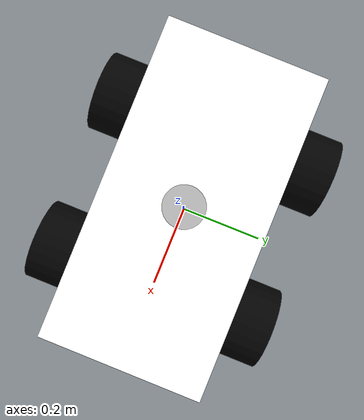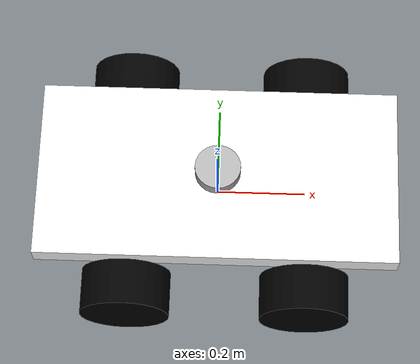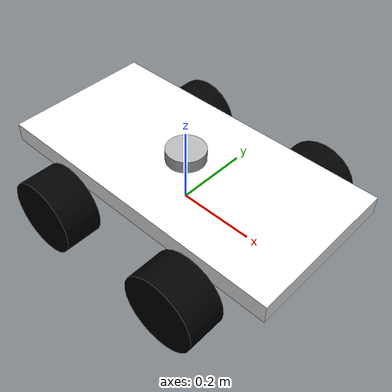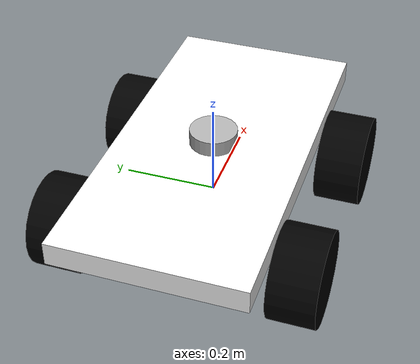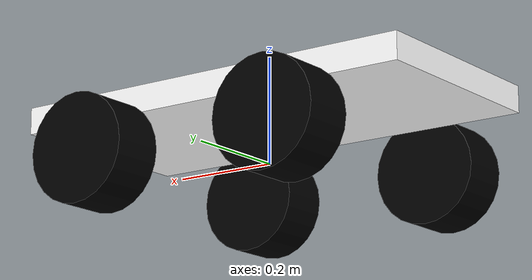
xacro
<?xml version="1.0"?>
<robot xmlns:xacro="http://www.ros.org/wiki/xacro"  name="robot">

    <xacro:arg name="use_ros2_control" default="true"/>

    <xacro:include filename="robot_core_lr.xacro" />

    <xacro:if value="$(arg use_ros2_control)">
        <xacro:include filename="ros2_control.xacro" />
    </xacro:if>
    <xacro:unless value="$(arg use_ros2_control)">
        <xacro:include filename="gazebo_control.xacro" />
    </xacro:unless>
    <xacro:include filename="lidar.xacro" />

</robot>

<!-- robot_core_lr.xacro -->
<robot xmlns:xacro="http://www.ros.org/wiki/xacro">

	<xacro:include filename="inertial_macros.xacro"/>

	<material name="white">
		<color rgba="1 1 1 1"/>
	</material>

	<material name="black">
		<color rgba="0 0 0 1"/>
	</material>

	<!-- BASE LINK -->
	<link name="base_link">

	</link>

	<!-- BASE FOOTPRINT -->
	<joint name="base_footprint_joint" type="fixed">
		<parent link="base_link"/>
		<child link="base_footprint"/>
		<origin xyz="0 0 0" rpy="0 0 0"/>
	</joint>

	<link name="base_footprint">

	</link>

	<!-- CHASSIS -->
	<joint name="chassis_joint" type="fixed">
		<parent link="base_link"/>
		<child link="chassis_link"/>
		<origin xyz="0 0 0"/>
	</joint>

	<link name="chassis_link">
		<visual>
			<origin xyz="0 0 0.1"/>
			<geometry>
				<box size="0.8 0.4 0.05"/>
			</geometry>
			<material name="white"/>
		</visual>

		<collision>
			<origin xyz="0 0 0.1"/>
			<geometry>
				<box size="0.8 0.4 0.05"/>
			</geometry>
		</collision>

		<xacro:inertial_box mass="0.5" x="0.8" y="0.4" z="0.05">
        	<origin xyz="0 0 0.1" rpy="0 0 0"/>
        </xacro:inertial_box>
	</link>

	<gazebo reference="chassis">
		<material>Gazebo/White</material>
	</gazebo>

	<!-- WHEEL1 -->
	<joint name="wheel1_joint" type="continuous">
		<parent link="base_link"/>
		<child link="wheel1_link"/>
		<origin xyz="0.2 0.25 0" rpy="${-pi/2} 0 0"/>
		<axis xyz="0 0 1"/>
		<limit effort="10000" velocity="1000" />
	    <dynamics damping="1.0" friction="1.0" />
	</joint>

	<link name="wheel1_link">
		<visual>
			<geometry>
				<cylinder radius="0.1" length="0.1"/>
			</geometry>
			<material name="black"/>
		</visual>

		<collision>
			<geometry>
				<cylinder radius="0.1" length="0.1"/>
			</geometry>
		</collision>

		<xacro:inertial_cylinder mass="0.1" length="0.1" radius="0.1">
        	<origin xyz="0 0 0" rpy="0 0 0"/>
        </xacro:inertial_cylinder>
	</link>

	<gazebo reference="wheel1_link">
		<material>Gazebo/Black</material>
	</gazebo>

	<!-- WHEEL2 -->
	<joint name="wheel2_joint" type="continuous">
		<parent link="base_link"/>
		<child link="wheel2_link"/>
		<origin xyz="0.2 -0.25 0" rpy="${pi/2} 0 0"/>
		<axis xyz="0 0 -1"/>
		<limit effort="10000" velocity="1000" />
	    <dynamics damping="1.0" friction="1.0" />
	</joint>

	<link name="wheel2_link">
		<visual>
			<geometry>
				<cylinder radius="0.1" length="0.1"/>
			</geometry>
			<material name="black"/>
		</visual>

		<collision>
			<geometry>
				<cylinder radius="0.1" length="0.1"/>
			</geometry>
		</collision>

		<xacro:inertial_cylinder mass="0.1" length="0.1" radius="0.1">
        	<origin xyz="0 0 0" rpy="0 0 0"/>
        </xacro:inertial_cylinder>
	</link>

	<gazebo reference="wheel2_link">
		<material>Gazebo/Black</material>
	</gazebo>

	<!-- WHEEL3 -->
	<joint name="wheel3_joint" type="continuous">
		<parent link="base_link"/>
		<child link="wheel3_link"/>
		<origin xyz="-0.2 0.25 0" rpy="${-pi/2} 0 0"/>
		<axis xyz="0 0 1"/>
		<limit effort="10000" velocity="1000" />
	    <dynamics damping="1.0" friction="1.0" />
	</joint>

	<link name="wheel3_link">
		<visual>
			<geometry>
				<cylinder radius="0.1" length="0.1"/>
			</geometry>
			<material name="black"/>
		</visual>

		<collision>
			<geometry>
				<cylinder radius="0.1" length="0.1"/>
			</geometry>
		</collision>

		<xacro:inertial_cylinder mass="0.1" length="0.1" radius="0.1">
        	<origin xyz="0 0 0" rpy="0 0 0"/>
        </xacro:inertial_cylinder>
	</link>

	<gazebo reference="wheel3_link">
		<material>Gazebo/Black</material>
	</gazebo>

	<!-- WHEEL4 -->
	<joint name="wheel4_joint" type="continuous">
		<parent link="base_link"/>
		<child link="wheel4_link"/>
		<origin xyz="-0.2 -0.25 0" rpy="${pi/2} 0 0"/>
		<axis xyz="0 0 -1"/>
		<limit effort="10000" velocity="1000" />
	    <dynamics damping="1.0" friction="1.0" />
	</joint>

	<link name="wheel4_link">
		<visual>
			<geometry>
				<cylinder radius="0.1" length="0.1"/>
			</geometry>
			<material name="black"/>
		</visual>

		<collision>
			<geometry>
				<cylinder radius="0.1" length="0.1"/>
			</geometry>
		</collision>

		<xacro:inertial_cylinder mass="0.1" length="0.1" radius="0.1">
        	<origin xyz="0 0 0" rpy="0 0 0"/>
        </xacro:inertial_cylinder>
	</link>

	<gazebo reference="wheel4_link">
		<material>Gazebo/Black</material>
	</gazebo>
</robot>

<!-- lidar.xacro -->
<robot xmlns:xacro="http://www.ros.org/wiki/xacro" >

<link name="laser_link">
  <inertial>
    <origin xyz="0 0 0" rpy="0 0 0"/>
    <mass value="0.125"/>
    <inertia ixx="0.001"  ixy="0"  ixz="0" iyy="0.001" iyz="0" izz="0.001" />
  </inertial>

  <collision>
    <origin xyz="0 0 0" rpy="0 0 0"/>
    <geometry>
       <cylinder radius="0.0508" length="0.055"/>
    </geometry>
  </collision>

  <visual>
    <origin xyz="0 0 0" rpy="0 0 0"/>
    <geometry>
       <cylinder radius="0.0508" length="0.055"/>
    </geometry>
  </visual>
</link>

<joint name="lidar_joint" type="fixed">
  <parent link="base_link"/>
  <child link="laser_link"/>
  <origin xyz="0 0 0.13" rpy="0 0 0"/>
</joint>

<gazebo reference="laser_link">
  <sensor name="lidar" type="ray">
    <pose>0 0 0 0 0 0</pose>
    <always_on>true</always_on>
    <visualize>true</visualize>
    <update_rate>5</update_rate>
    <ray>
      <scan>
        <horizontal>
          <samples>360</samples>
          <resolution>1.000000</resolution>
          <min_angle>0.000000</min_angle>
          <max_angle>6.280000</max_angle>
        </horizontal>
      </scan>
      <range>
        <min>0.120000</min>
        <max>3.5</max>
        <resolution>0.015000</resolution>
      </range>
      <noise>
        <type>gaussian</type>
        <mean>0.0</mean>
        <stddev>0.01</stddev>
      </noise>
    </ray>
    <plugin name="scan" filename="libgazebo_ros_ray_sensor.so">
      <ros>
        <argument>~/out:=scan</argument>
      </ros>
      <output_type>sensor_msgs/LaserScan</output_type>
      <frame_name>laser_link</frame_name>
    </plugin>
  </sensor>
</gazebo>

</robot>
